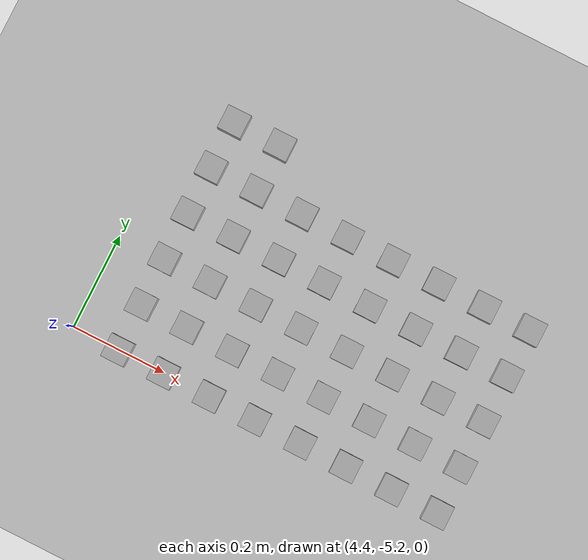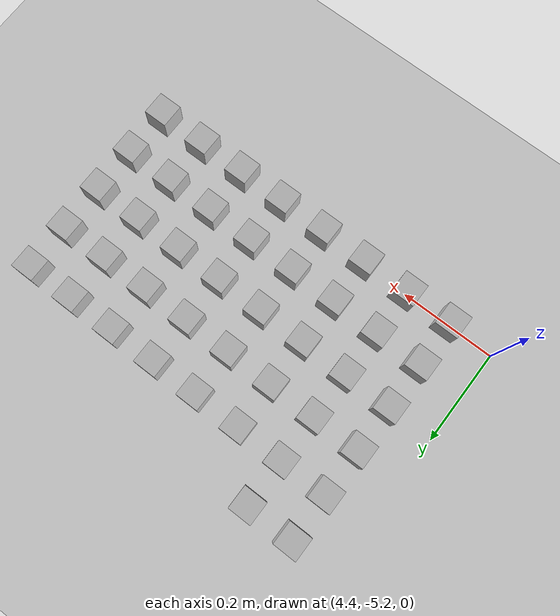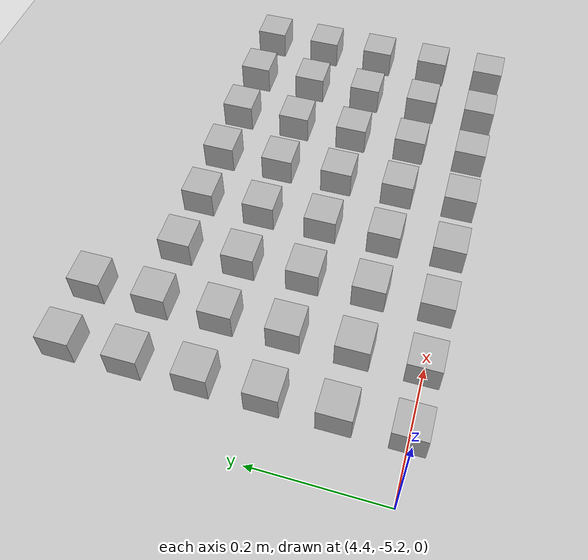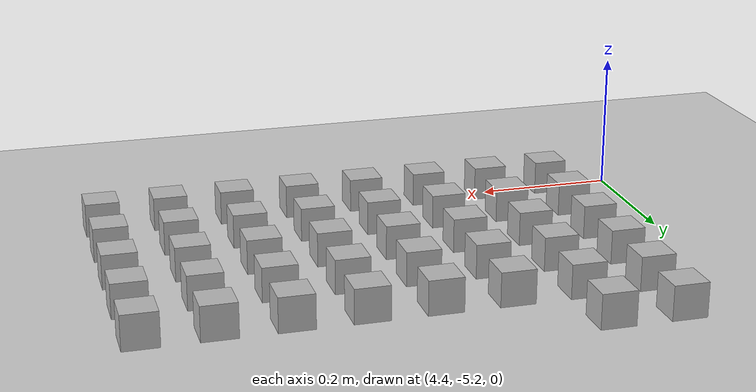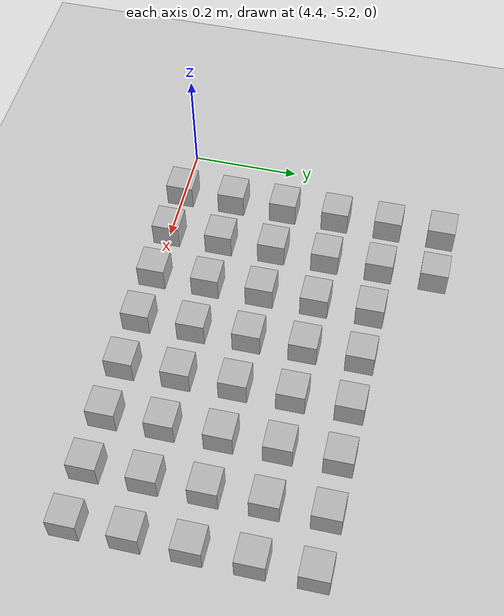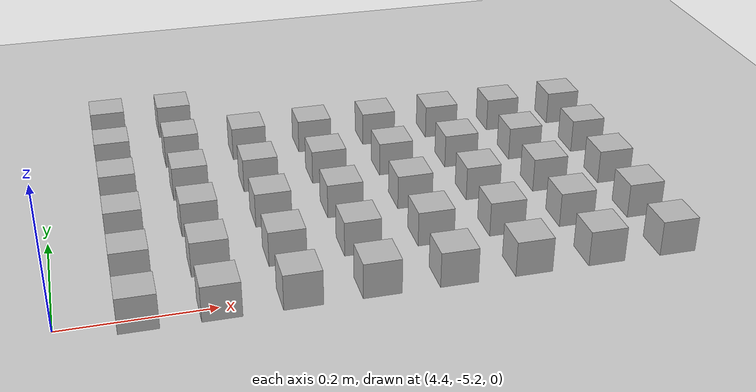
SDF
<sdf version="1.6">
 <world name="default">
  <model name="ground_plane">
   <static>1</static>
   <link name="link">
    <collision name="collision">
     <geometry><plane><normal>0 0 1</normal><size>100 100</size></plane></geometry>
     <surface><friction><ode><mu>100</mu><mu2>50</mu2></ode></friction></surface>
    </collision>
    <visual name="visual">
     <cast_shadows>0</cast_shadows>
     <geometry><plane><normal>0 0 1</normal><size>100 100</size></plane></geometry>
     <material>
      <script><uri>file://media/materials/scripts/gazebo.material</uri><name>Gazebo/Grey</name></script>
     </material>
    </visual>
   </link>
  </model>
  <model name="at64">
   <static>0</static>
   <link name="link">
    <inertial>
     <mass>0.01</mass>
     <inertia><ixx>4e-05</ixx><ixy>0</ixy><ixz>0</ixz><iyy>4e-05</iyy><iyz>0</iyz><izz>4e-05</izz></inertia>
    </inertial>
    <visual name="visual">
     <geometry><box><size>0.05 0.05 0.05</size></box></geometry>
     <material>
      <script>
       <uri>model://at0/materials/scripts</uri>
       <uri>model://at0/materials/textures</uri>
       <name>at0/Diffuse</name>
      </script>
     </material>
    </visual>
    <collision name="collision">
     <geometry><box><size>0.05 0.05 0.05</size></box></geometry>
     <surface><friction><ode><mu>0.8</mu><mu2>0.7</mu2></ode></friction></surface>
    </collision>
   </link>
   <pose>4.5 -5.2 0.025 0 -0 0</pose>
  </model>
  <model name="at65">
   <static>0</static>
   <link name="link">
    <inertial>
     <mass>0.01</mass>
     <inertia><ixx>4e-05</ixx><ixy>0</ixy><ixz>0</ixz><iyy>4e-05</iyy><iyz>0</iyz><izz>4e-05</izz></inertia>
    </inertial>
    <visual name="visual">
     <geometry><box><size>0.05 0.05 0.05</size></box></geometry>
     <material>
      <script>
       <uri>model://at0/materials/scripts</uri>
       <uri>model://at0/materials/textures</uri>
       <name>at0/Diffuse</name>
      </script>
     </material>
    </visual>
    <collision name="collision">
     <geometry><box><size>0.05 0.05 0.05</size></box></geometry>
     <surface><friction><ode><mu>0.8</mu><mu2>0.7</mu2></ode></friction></surface>
    </collision>
   </link>
   <pose>4.6 -5.2 0.025 0 -0 0</pose>
  </model>
  <model name="at66">
   <static>0</static>
   <link name="link">
    <inertial>
     <mass>0.01</mass>
     <inertia><ixx>4e-05</ixx><ixy>0</ixy><ixz>0</ixz><iyy>4e-05</iyy><iyz>0</iyz><izz>4e-05</izz></inertia>
    </inertial>
    <visual name="visual">
     <geometry><box><size>0.05 0.05 0.05</size></box></geometry>
     <material>
      <script>
       <uri>model://at0/materials/scripts</uri>
       <uri>model://at0/materials/textures</uri>
       <name>at0/Diffuse</name>
      </script>
     </material>
    </visual>
    <collision name="collision">
     <geometry><box><size>0.05 0.05 0.05</size></box></geometry>
     <surface><friction><ode><mu>0.8</mu><mu2>0.7</mu2></ode></friction></surface>
    </collision>
   </link>
   <pose>4.7 -5.2 0.025 0 -0 0</pose>
  </model>
  <model name="at67">
   <static>0</static>
   <link name="link">
    <inertial>
     <mass>0.01</mass>
     <inertia><ixx>4e-05</ixx><ixy>0</ixy><ixz>0</ixz><iyy>4e-05</iyy><iyz>0</iyz><izz>4e-05</izz></inertia>
    </inertial>
    <visual name="visual">
     <geometry><box><size>0.05 0.05 0.05</size></box></geometry>
     <material>
      <script>
       <uri>model://at0/materials/scripts</uri>
       <uri>model://at0/materials/textures</uri>
       <name>at0/Diffuse</name>
      </script>
     </material>
    </visual>
    <collision name="collision">
     <geometry><box><size>0.05 0.05 0.05</size></box></geometry>
     <surface><friction><ode><mu>0.8</mu><mu2>0.7</mu2></ode></friction></surface>
    </collision>
   </link>
   <pose>4.8 -5.2 0.025 0 -0 0</pose>
  </model>
  <model name="at68">
   <static>0</static>
   <link name="link">
    <inertial>
     <mass>0.01</mass>
     <inertia><ixx>4e-05</ixx><ixy>0</ixy><ixz>0</ixz><iyy>4e-05</iyy><iyz>0</iyz><izz>4e-05</izz></inertia>
    </inertial>
    <visual name="visual">
     <geometry><box><size>0.05 0.05 0.05</size></box></geometry>
     <material>
      <script>
       <uri>model://at0/materials/scripts</uri>
       <uri>model://at0/materials/textures</uri>
       <name>at0/Diffuse</name>
      </script>
     </material>
    </visual>
    <collision name="collision">
     <geometry><box><size>0.05 0.05 0.05</size></box></geometry>
     <surface><friction><ode><mu>0.8</mu><mu2>0.7</mu2></ode></friction></surface>
    </collision>
   </link>
   <pose>4.9 -5.2 0.025 0 -0 0</pose>
  </model>
  <model name="at69">
   <static>0</static>
   <link name="link">
    <inertial>
     <mass>0.01</mass>
     <inertia><ixx>4e-05</ixx><ixy>0</ixy><ixz>0</ixz><iyy>4e-05</iyy><iyz>0</iyz><izz>4e-05</izz></inertia>
    </inertial>
    <visual name="visual">
     <geometry><box><size>0.05 0.05 0.05</size></box></geometry>
     <material>
      <script>
       <uri>model://at0/materials/scripts</uri>
       <uri>model://at0/materials/textures</uri>
       <name>at0/Diffuse</name>
      </script>
     </material>
    </visual>
    <collision name="collision">
     <geometry><box><size>0.05 0.05 0.05</size></box></geometry>
     <surface><friction><ode><mu>0.8</mu><mu2>0.7</mu2></ode></friction></surface>
    </collision>
   </link>
   <pose>5.0 -5.2 0.025 0 -0 0</pose>
  </model>
  <model name="at70">
   <static>0</static>
   <link name="link">
    <inertial>
     <mass>0.01</mass>
     <inertia><ixx>4e-05</ixx><ixy>0</ixy><ixz>0</ixz><iyy>4e-05</iyy><iyz>0</iyz><izz>4e-05</izz></inertia>
    </inertial>
    <visual name="visual">
     <geometry><box><size>0.05 0.05 0.05</size></box></geometry>
     <material>
      <script>
       <uri>model://at0/materials/scripts</uri>
       <uri>model://at0/materials/textures</uri>
       <name>at0/Diffuse</name>
      </script>
     </material>
    </visual>
    <collision name="collision">
     <geometry><box><size>0.05 0.05 0.05</size></box></geometry>
     <surface><friction><ode><mu>0.8</mu><mu2>0.7</mu2></ode></friction></surface>
    </collision>
   </link>
   <pose>5.1 -5.2 0.025 0 -0 0</pose>
  </model>
  <model name="at71">
   <static>0</static>
   <link name="link">
    <inertial>
     <mass>0.01</mass>
     <inertia><ixx>4e-05</ixx><ixy>0</ixy><ixz>0</ixz><iyy>4e-05</iyy><iyz>0</iyz><izz>4e-05</izz></inertia>
    </inertial>
    <visual name="visual">
     <geometry><box><size>0.05 0.05 0.05</size></box></geometry>
     <material>
      <script>
       <uri>model://at0/materials/scripts</uri>
       <uri>model://at0/materials/textures</uri>
       <name>at0/Diffuse</name>
      </script>
     </material>
    </visual>
    <collision name="collision">
     <geometry><box><size>0.05 0.05 0.05</size></box></geometry>
     <surface><friction><ode><mu>0.8</mu><mu2>0.7</mu2></ode></friction></surface>
    </collision>
   </link>
   <pose>5.2 -5.2 0.025 0 -0 0</pose>
  </model>
  <model name="at72">
   <static>0</static>
   <link name="link">
    <inertial>
     <mass>0.01</mass>
     <inertia><ixx>4e-05</ixx><ixy>0</ixy><ixz>0</ixz><iyy>4e-05</iyy><iyz>0</iyz><izz>4e-05</izz></inertia>
    </inertial>
    <visual name="visual">
     <geometry><box><size>0.05 0.05 0.05</size></box></geometry>
     <material>
      <script>
       <uri>model://at0/materials/scripts</uri>
       <uri>model://at0/materials/textures</uri>
       <name>at0/Diffuse</name>
      </script>
     </material>
    </visual>
    <collision name="collision">
     <geometry><box><size>0.05 0.05 0.05</size></box></geometry>
     <surface><friction><ode><mu>0.8</mu><mu2>0.7</mu2></ode></friction></surface>
    </collision>
   </link>
   <pose>4.5 -5.1 0.025 0 -0 0</pose>
  </model>
  <model name="at73">
   <static>0</static>
   <link name="link">
    <inertial>
     <mass>0.01</mass>
     <inertia><ixx>4e-05</ixx><ixy>0</ixy><ixz>0</ixz><iyy>4e-05</iyy><iyz>0</iyz><izz>4e-05</izz></inertia>
    </inertial>
    <visual name="visual">
     <geometry><box><size>0.05 0.05 0.05</size></box></geometry>
     <material>
      <script>
       <uri>model://at0/materials/scripts</uri>
       <uri>model://at0/materials/textures</uri>
       <name>at0/Diffuse</name>
      </script>
     </material>
    </visual>
    <collision name="collision">
     <geometry><box><size>0.05 0.05 0.05</size></box></geometry>
     <surface><friction><ode><mu>0.8</mu><mu2>0.7</mu2></ode></friction></surface>
    </collision>
   </link>
   <pose>4.6 -5.1 0.025 0 -0 0</pose>
  </model>
  <model name="at74">
   <static>0</static>
   <link name="link">
    <inertial>
     <mass>0.01</mass>
     <inertia><ixx>4e-05</ixx><ixy>0</ixy><ixz>0</ixz><iyy>4e-05</iyy><iyz>0</iyz><izz>4e-05</izz></inertia>
    </inertial>
    <visual name="visual">
     <geometry><box><size>0.05 0.05 0.05</size></box></geometry>
     <material>
      <script>
       <uri>model://at0/materials/scripts</uri>
       <uri>model://at0/materials/textures</uri>
       <name>at0/Diffuse</name>
      </script>
     </material>
    </visual>
    <collision name="collision">
     <geometry><box><size>0.05 0.05 0.05</size></box></geometry>
     <surface><friction><ode><mu>0.8</mu><mu2>0.7</mu2></ode></friction></surface>
    </collision>
   </link>
   <pose>4.7 -5.1 0.025 0 -0 0</pose>
  </model>
  <model name="at75">
   <static>0</static>
   <link name="link">
    <inertial>
     <mass>0.01</mass>
     <inertia><ixx>4e-05</ixx><ixy>0</ixy><ixz>0</ixz><iyy>4e-05</iyy><iyz>0</iyz><izz>4e-05</izz></inertia>
    </inertial>
    <visual name="visual">
     <geometry><box><size>0.05 0.05 0.05</size></box></geometry>
     <material>
      <script>
       <uri>model://at0/materials/scripts</uri>
       <uri>model://at0/materials/textures</uri>
       <name>at0/Diffuse</name>
      </script>
     </material>
    </visual>
    <collision name="collision">
     <geometry><box><size>0.05 0.05 0.05</size></box></geometry>
     <surface><friction><ode><mu>0.8</mu><mu2>0.7</mu2></ode></friction></surface>
    </collision>
   </link>
   <pose>4.8 -5.1 0.025 0 -0 0</pose>
  </model>
  <model name="at76">
   <static>0</static>
   <link name="link">
    <inertial>
     <mass>0.01</mass>
     <inertia><ixx>4e-05</ixx><ixy>0</ixy><ixz>0</ixz><iyy>4e-05</iyy><iyz>0</iyz><izz>4e-05</izz></inertia>
    </inertial>
    <visual name="visual">
     <geometry><box><size>0.05 0.05 0.05</size></box></geometry>
     <material>
      <script>
       <uri>model://at0/materials/scripts</uri>
       <uri>model://at0/materials/textures</uri>
       <name>at0/Diffuse</name>
      </script>
     </material>
    </visual>
    <collision name="collision">
     <geometry><box><size>0.05 0.05 0.05</size></box></geometry>
     <surface><friction><ode><mu>0.8</mu><mu2>0.7</mu2></ode></friction></surface>
    </collision>
   </link>
   <pose>4.9 -5.1 0.025 0 -0 0</pose>
  </model>
  <model name="at77">
   <static>0</static>
   <link name="link">
    <inertial>
     <mass>0.01</mass>
     <inertia><ixx>4e-05</ixx><ixy>0</ixy><ixz>0</ixz><iyy>4e-05</iyy><iyz>0</iyz><izz>4e-05</izz></inertia>
    </inertial>
    <visual name="visual">
     <geometry><box><size>0.05 0.05 0.05</size></box></geometry>
     <material>
      <script>
       <uri>model://at0/materials/scripts</uri>
       <uri>model://at0/materials/textures</uri>
       <name>at0/Diffuse</name>
      </script>
     </material>
    </visual>
    <collision name="collision">
     <geometry><box><size>0.05 0.05 0.05</size></box></geometry>
     <surface><friction><ode><mu>0.8</mu><mu2>0.7</mu2></ode></friction></surface>
    </collision>
   </link>
   <pose>5.0 -5.1 0.025 0 -0 0</pose>
  </model>
  <model name="at78">
   <static>0</static>
   <link name="link">
    <inertial>
     <mass>0.01</mass>
     <inertia><ixx>4e-05</ixx><ixy>0</ixy><ixz>0</ixz><iyy>4e-05</iyy><iyz>0</iyz><izz>4e-05</izz></inertia>
    </inertial>
    <visual name="visual">
     <geometry><box><size>0.05 0.05 0.05</size></box></geometry>
     <material>
      <script>
       <uri>model://at0/materials/scripts</uri>
       <uri>model://at0/materials/textures</uri>
       <name>at0/Diffuse</name>
      </script>
     </material>
    </visual>
    <collision name="collision">
     <geometry><box><size>0.05 0.05 0.05</size></box></geometry>
     <surface><friction><ode><mu>0.8</mu><mu2>0.7</mu2></ode></friction></surface>
    </collision>
   </link>
   <pose>5.1 -5.1 0.025 0 -0 0</pose>
  </model>
  <model name="at79">
   <static>0</static>
   <link name="link">
    <inertial>
     <mass>0.01</mass>
     <inertia><ixx>4e-05</ixx><ixy>0</ixy><ixz>0</ixz><iyy>4e-05</iyy><iyz>0</iyz><izz>4e-05</izz></inertia>
    </inertial>
    <visual name="visual">
     <geometry><box><size>0.05 0.05 0.05</size></box></geometry>
     <material>
      <script>
       <uri>model://at0/materials/scripts</uri>
       <uri>model://at0/materials/textures</uri>
       <name>at0/Diffuse</name>
      </script>
     </material>
    </visual>
    <collision name="collision">
     <geometry><box><size>0.05 0.05 0.05</size></box></geometry>
     <surface><friction><ode><mu>0.8</mu><mu2>0.7</mu2></ode></friction></surface>
    </collision>
   </link>
   <pose>5.2 -5.1 0.025 0 -0 0</pose>
  </model>
  <model name="at80">
   <static>0</static>
   <link name="link">
    <inertial>
     <mass>0.01</mass>
     <inertia><ixx>4e-05</ixx><ixy>0</ixy><ixz>0</ixz><iyy>4e-05</iyy><iyz>0</iyz><izz>4e-05</izz></inertia>
    </inertial>
    <visual name="visual">
     <geometry><box><size>0.05 0.05 0.05</size></box></geometry>
     <material>
      <script>
       <uri>model://at0/materials/scripts</uri>
       <uri>model://at0/materials/textures</uri>
       <name>at0/Diffuse</name>
      </script>
     </material>
    </visual>
    <collision name="collision">
     <geometry><box><size>0.05 0.05 0.05</size></box></geometry>
     <surface><friction><ode><mu>0.8</mu><mu2>0.7</mu2></ode></friction></surface>
    </collision>
   </link>
   <pose>4.5 -5.0 0.025 0 -0 0</pose>
  </model>
  <model name="at81">
   <static>0</static>
   <link name="link">
    <inertial>
     <mass>0.01</mass>
     <inertia><ixx>4e-05</ixx><ixy>0</ixy><ixz>0</ixz><iyy>4e-05</iyy><iyz>0</iyz><izz>4e-05</izz></inertia>
    </inertial>
    <visual name="visual">
     <geometry><box><size>0.05 0.05 0.05</size></box></geometry>
     <material>
      <script>
       <uri>model://at0/materials/scripts</uri>
       <uri>model://at0/materials/textures</uri>
       <name>at0/Diffuse</name>
      </script>
     </material>
    </visual>
    <collision name="collision">
     <geometry><box><size>0.05 0.05 0.05</size></box></geometry>
     <surface><friction><ode><mu>0.8</mu><mu2>0.7</mu2></ode></friction></surface>
    </collision>
   </link>
   <pose>4.6 -5.0 0.025 0 -0 0</pose>
  </model>
  <model name="at82">
   <static>0</static>
   <link name="link">
    <inertial>
     <mass>0.01</mass>
     <inertia><ixx>4e-05</ixx><ixy>0</ixy><ixz>0</ixz><iyy>4e-05</iyy><iyz>0</iyz><izz>4e-05</izz></inertia>
    </inertial>
    <visual name="visual">
     <geometry><box><size>0.05 0.05 0.05</size></box></geometry>
     <material>
      <script>
       <uri>model://at0/materials/scripts</uri>
       <uri>model://at0/materials/textures</uri>
       <name>at0/Diffuse</name>
      </script>
     </material>
    </visual>
    <collision name="collision">
     <geometry><box><size>0.05 0.05 0.05</size></box></geometry>
     <surface><friction><ode><mu>0.8</mu><mu2>0.7</mu2></ode></friction></surface>
    </collision>
   </link>
   <pose>4.7 -5.0 0.025 0 -0 0</pose>
  </model>
  <model name="at83">
   <static>0</static>
   <link name="link">
    <inertial>
     <mass>0.01</mass>
     <inertia><ixx>4e-05</ixx><ixy>0</ixy><ixz>0</ixz><iyy>4e-05</iyy><iyz>0</iyz><izz>4e-05</izz></inertia>
    </inertial>
    <visual name="visual">
     <geometry><box><size>0.05 0.05 0.05</size></box></geometry>
     <material>
      <script>
       <uri>model://at0/materials/scripts</uri>
       <uri>model://at0/materials/textures</uri>
       <name>at0/Diffuse</name>
      </script>
     </material>
    </visual>
    <collision name="collision">
     <geometry><box><size>0.05 0.05 0.05</size></box></geometry>
     <surface><friction><ode><mu>0.8</mu><mu2>0.7</mu2></ode></friction></surface>
    </collision>
   </link>
   <pose>4.8 -5.0 0.025 0 -0 0</pose>
  </model>
  <model name="at84">
   <static>0</static>
   <link name="link">
    <inertial>
     <mass>0.01</mass>
     <inertia><ixx>4e-05</ixx><ixy>0</ixy><ixz>0</ixz><iyy>4e-05</iyy><iyz>0</iyz><izz>4e-05</izz></inertia>
    </inertial>
    <visual name="visual">
     <geometry><box><size>0.05 0.05 0.05</size></box></geometry>
     <material>
      <script>
       <uri>model://at0/materials/scripts</uri>
       <uri>model://at0/materials/textures</uri>
       <name>at0/Diffuse</name>
      </script>
     </material>
    </visual>
    <collision name="collision">
     <geometry><box><size>0.05 0.05 0.05</size></box></geometry>
     <surface><friction><ode><mu>0.8</mu><mu2>0.7</mu2></ode></friction></surface>
    </collision>
   </link>
   <pose>4.9 -5.0 0.025 0 -0 0</pose>
  </model>
  <model name="at85">
   <static>0</static>
   <link name="link">
    <inertial>
     <mass>0.01</mass>
     <inertia><ixx>4e-05</ixx><ixy>0</ixy><ixz>0</ixz><iyy>4e-05</iyy><iyz>0</iyz><izz>4e-05</izz></inertia>
    </inertial>
    <visual name="visual">
     <geometry><box><size>0.05 0.05 0.05</size></box></geometry>
     <material>
      <script>
       <uri>model://at0/materials/scripts</uri>
       <uri>model://at0/materials/textures</uri>
       <name>at0/Diffuse</name>
      </script>
     </material>
    </visual>
    <collision name="collision">
     <geometry><box><size>0.05 0.05 0.05</size></box></geometry>
     <surface><friction><ode><mu>0.8</mu><mu2>0.7</mu2></ode></friction></surface>
    </collision>
   </link>
   <pose>5.0 -5.0 0.025 0 -0 0</pose>
  </model>
  <model name="at86">
   <static>0</static>
   <link name="link">
    <inertial>
     <mass>0.01</mass>
     <inertia><ixx>4e-05</ixx><ixy>0</ixy><ixz>0</ixz><iyy>4e-05</iyy><iyz>0</iyz><izz>4e-05</izz></inertia>
    </inertial>
    <visual name="visual">
     <geometry><box><size>0.05 0.05 0.05</size></box></geometry>
     <material>
      <script>
       <uri>model://at0/materials/scripts</uri>
       <uri>model://at0/materials/textures</uri>
       <name>at0/Diffuse</name>
      </script>
     </material>
    </visual>
    <collision name="collision">
     <geometry><box><size>0.05 0.05 0.05</size></box></geometry>
     <surface><friction><ode><mu>0.8</mu><mu2>0.7</mu2></ode></friction></surface>
    </collision>
   </link>
   <pose>5.1 -5.0 0.025 0 -0 0</pose>
  </model>
  <model name="at87">
   <static>0</static>
   <link name="link">
    <inertial>
     <mass>0.01</mass>
     <inertia><ixx>4e-05</ixx><ixy>0</ixy><ixz>0</ixz><iyy>4e-05</iyy><iyz>0</iyz><izz>4e-05</izz></inertia>
    </inertial>
    <visual name="visual">
     <geometry><box><size>0.05 0.05 0.05</size></box></geometry>
     <material>
      <script>
       <uri>model://at0/materials/scripts</uri>
       <uri>model://at0/materials/textures</uri>
       <name>at0/Diffuse</name>
      </script>
     </material>
    </visual>
    <collision name="collision">
     <geometry><box><size>0.05 0.05 0.05</size></box></geometry>
     <surface><friction><ode><mu>0.8</mu><mu2>0.7</mu2></ode></friction></surface>
    </collision>
   </link>
   <pose>5.2 -5.0 0.025 0 -0 0</pose>
  </model>
  <model name="at88">
   <static>0</static>
   <link name="link">
    <inertial>
     <mass>0.01</mass>
     <inertia><ixx>4e-05</ixx><ixy>0</ixy><ixz>0</ixz><iyy>4e-05</iyy><iyz>0</iyz><izz>4e-05</izz></inertia>
    </inertial>
    <visual name="visual">
     <geometry><box><size>0.05 0.05 0.05</size></box></geometry>
     <material>
      <script>
       <uri>model://at0/materials/scripts</uri>
       <uri>model://at0/materials/textures</uri>
       <name>at0/Diffuse</name>
      </script>
     </material>
    </visual>
    <collision name="collision">
     <geometry><box><size>0.05 0.05 0.05</size></box></geometry>
     <surface><friction><ode><mu>0.8</mu><mu2>0.7</mu2></ode></friction></surface>
    </collision>
   </link>
   <pose>4.5 -4.9 0.025 0 -0 0</pose>
  </model>
  <model name="at89">
   <static>0</static>
   <link name="link">
    <inertial>
     <mass>0.01</mass>
     <inertia><ixx>4e-05</ixx><ixy>0</ixy><ixz>0</ixz><iyy>4e-05</iyy><iyz>0</iyz><izz>4e-05</izz></inertia>
    </inertial>
    <visual name="visual">
     <geometry><box><size>0.05 0.05 0.05</size></box></geometry>
     <material>
      <script>
       <uri>model://at0/materials/scripts</uri>
       <uri>model://at0/materials/textures</uri>
       <name>at0/Diffuse</name>
      </script>
     </material>
    </visual>
    <collision name="collision">
     <geometry><box><size>0.05 0.05 0.05</size></box></geometry>
     <surface><friction><ode><mu>0.8</mu><mu2>0.7</mu2></ode></friction></surface>
    </collision>
   </link>
   <pose>4.6 -4.9 0.025 0 -0 0</pose>
  </model>
  <model name="at90">
   <static>0</static>
   <link name="link">
    <inertial>
     <mass>0.01</mass>
     <inertia><ixx>4e-05</ixx><ixy>0</ixy><ixz>0</ixz><iyy>4e-05</iyy><iyz>0</iyz><izz>4e-05</izz></inertia>
    </inertial>
    <visual name="visual">
     <geometry><box><size>0.05 0.05 0.05</size></box></geometry>
     <material>
      <script>
       <uri>model://at0/materials/scripts</uri>
       <uri>model://at0/materials/textures</uri>
       <name>at0/Diffuse</name>
      </script>
     </material>
    </visual>
    <collision name="collision">
     <geometry><box><size>0.05 0.05 0.05</size></box></geometry>
     <surface><friction><ode><mu>0.8</mu><mu2>0.7</mu2></ode></friction></surface>
    </collision>
   </link>
   <pose>4.7 -4.9 0.025 0 -0 0</pose>
  </model>
  <model name="at91">
   <static>0</static>
   <link name="link">
    <inertial>
     <mass>0.01</mass>
     <inertia><ixx>4e-05</ixx><ixy>0</ixy><ixz>0</ixz><iyy>4e-05</iyy><iyz>0</iyz><izz>4e-05</izz></inertia>
    </inertial>
    <visual name="visual">
     <geometry><box><size>0.05 0.05 0.05</size></box></geometry>
     <material>
      <script>
       <uri>model://at0/materials/scripts</uri>
       <uri>model://at0/materials/textures</uri>
       <name>at0/Diffuse</name>
      </script>
     </material>
    </visual>
    <collision name="collision">
     <geometry><box><size>0.05 0.05 0.05</size></box></geometry>
     <surface><friction><ode><mu>0.8</mu><mu2>0.7</mu2></ode></friction></surface>
    </collision>
   </link>
   <pose>4.8 -4.9 0.025 0 -0 0</pose>
  </model>
  <model name="at92">
   <static>0</static>
   <link name="link">
    <inertial>
     <mass>0.01</mass>
     <inertia><ixx>4e-05</ixx><ixy>0</ixy><ixz>0</ixz><iyy>4e-05</iyy><iyz>0</iyz><izz>4e-05</izz></inertia>
    </inertial>
    <visual name="visual">
     <geometry><box><size>0.05 0.05 0.05</size></box></geometry>
     <material>
      <script>
       <uri>model://at0/materials/scripts</uri>
       <uri>model://at0/materials/textures</uri>
       <name>at0/Diffuse</name>
      </script>
     </material>
    </visual>
    <collision name="collision">
     <geometry><box><size>0.05 0.05 0.05</size></box></geometry>
     <surface><friction><ode><mu>0.8</mu><mu2>0.7</mu2></ode></friction></surface>
    </collision>
   </link>
   <pose>4.9 -4.9 0.025 0 -0 0</pose>
  </model>
  <model name="at93">
   <static>0</static>
   <link name="link">
    <inertial>
     <mass>0.01</mass>
     <inertia><ixx>4e-05</ixx><ixy>0</ixy><ixz>0</ixz><iyy>4e-05</iyy><iyz>0</iyz><izz>4e-05</izz></inertia>
    </inertial>
    <visual name="visual">
     <geometry><box><size>0.05 0.05 0.05</size></box></geometry>
     <material>
      <script>
       <uri>model://at0/materials/scripts</uri>
       <uri>model://at0/materials/textures</uri>
       <name>at0/Diffuse</name>
      </script>
     </material>
    </visual>
    <collision name="collision">
     <geometry><box><size>0.05 0.05 0.05</size></box></geometry>
     <surface><friction><ode><mu>0.8</mu><mu2>0.7</mu2></ode></friction></surface>
    </collision>
   </link>
   <pose>5.0 -4.9 0.025 0 -0 0</pose>
  </model>
  <model name="at94">
   <static>0</static>
   <link name="link">
    <inertial>
     <mass>0.01</mass>
     <inertia><ixx>4e-05</ixx><ixy>0</ixy><ixz>0</ixz><iyy>4e-05</iyy><iyz>0</iyz><izz>4e-05</izz></inertia>
    </inertial>
    <visual name="visual">
     <geometry><box><size>0.05 0.05 0.05</size></box></geometry>
     <material>
      <script>
       <uri>model://at0/materials/scripts</uri>
       <uri>model://at0/materials/textures</uri>
       <name>at0/Diffuse</name>
      </script>
     </material>
    </visual>
    <collision name="collision">
     <geometry><box><size>0.05 0.05 0.05</size></box></geometry>
     <surface><friction><ode><mu>0.8</mu><mu2>0.7</mu2></ode></friction></surface>
    </collision>
   </link>
   <pose>5.1 -4.9 0.025 0 -0 0</pose>
  </model>
  <model name="at95">
   <static>0</static>
   <link name="link">
    <inertial>
     <mass>0.01</mass>
     <inertia><ixx>4e-05</ixx><ixy>0</ixy><ixz>0</ixz><iyy>4e-05</iyy><iyz>0</iyz><izz>4e-05</izz></inertia>
    </inertial>
    <visual name="visual">
     <geometry><box><size>0.05 0.05 0.05</size></box></geometry>
     <material>
      <script>
       <uri>model://at0/materials/scripts</uri>
       <uri>model://at0/materials/textures</uri>
       <name>at0/Diffuse</name>
      </script>
     </material>
    </visual>
    <collision name="collision">
     <geometry><box><size>0.05 0.05 0.05</size></box></geometry>
     <surface><friction><ode><mu>0.8</mu><mu2>0.7</mu2></ode></friction></surface>
    </collision>
   </link>
   <pose>5.2 -4.9 0.025 0 -0 0</pose>
  </model>
  <model name="at96">
   <static>0</static>
   <link name="link">
    <inertial>
     <mass>0.01</mass>
     <inertia><ixx>4e-05</ixx><ixy>0</ixy><ixz>0</ixz><iyy>4e-05</iyy><iyz>0</iyz><izz>4e-05</izz></inertia>
    </inertial>
    <visual name="visual">
     <geometry><box><size>0.05 0.05 0.05</size></box></geometry>
     <material>
      <script>
       <uri>model://at0/materials/scripts</uri>
       <uri>model://at0/materials/textures</uri>
       <name>at0/Diffuse</name>
      </script>
     </material>
    </visual>
    <collision name="collision">
     <geometry><box><size>0.05 0.05 0.05</size></box></geometry>
     <surface><friction><ode><mu>0.8</mu><mu2>0.7</mu2></ode></friction></surface>
    </collision>
   </link>
   <pose>4.5 -4.8 0.025 0 -0 0</pose>
  </model>
  <model name="at97">
   <static>0</static>
   <link name="link">
    <inertial>
     <mass>0.01</mass>
     <inertia><ixx>4e-05</ixx><ixy>0</ixy><ixz>0</ixz><iyy>4e-05</iyy><iyz>0</iyz><izz>4e-05</izz></inertia>
    </inertial>
    <visual name="visual">
     <geometry><box><size>0.05 0.05 0.05</size></box></geometry>
     <material>
      <script>
       <uri>model://at0/materials/scripts</uri>
       <uri>model://at0/materials/textures</uri>
       <name>at0/Diffuse</name>
      </script>
     </material>
    </visual>
    <collision name="collision">
     <geometry><box><size>0.05 0.05 0.05</size></box></geometry>
     <surface><friction><ode><mu>0.8</mu><mu2>0.7</mu2></ode></friction></surface>
    </collision>
   </link>
   <pose>4.6 -4.8 0.025 0 -0 0</pose>
  </model>
  <model name="at98">
   <static>0</static>
   <link name="link">
    <inertial>
     <mass>0.01</mass>
     <inertia><ixx>4e-05</ixx><ixy>0</ixy><ixz>0</ixz><iyy>4e-05</iyy><iyz>0</iyz><izz>4e-05</izz></inertia>
    </inertial>
    <visual name="visual">
     <geometry><box><size>0.05 0.05 0.05</size></box></geometry>
     <material>
      <script>
       <uri>model://at0/materials/scripts</uri>
       <uri>model://at0/materials/textures</uri>
       <name>at0/Diffuse</name>
      </script>
     </material>
    </visual>
    <collision name="collision">
     <geometry><box><size>0.05 0.05 0.05</size></box></geometry>
     <surface><friction><ode><mu>0.8</mu><mu2>0.7</mu2></ode></friction></surface>
    </collision>
   </link>
   <pose>4.7 -4.8 0.025 0 -0 0</pose>
  </model>
  <model name="at99">
   <static>0</static>
   <link name="link">
    <inertial>
     <mass>0.01</mass>
     <inertia><ixx>4e-05</ixx><ixy>0</ixy><ixz>0</ixz><iyy>4e-05</iyy><iyz>0</iyz><izz>4e-05</izz></inertia>
    </inertial>
    <visual name="visual">
     <geometry><box><size>0.05 0.05 0.05</size></box></geometry>
     <material>
      <script>
       <uri>model://at0/materials/scripts</uri>
       <uri>model://at0/materials/textures</uri>
       <name>at0/Diffuse</name>
      </script>
     </material>
    </visual>
    <collision name="collision">
     <geometry><box><size>0.05 0.05 0.05</size></box></geometry>
     <surface><friction><ode><mu>0.8</mu><mu2>0.7</mu2></ode></friction></surface>
    </collision>
   </link>
   <pose>4.8 -4.8 0.025 0 -0 0</pose>
  </model>
  <model name="at100">
   <static>0</static>
   <link name="link">
    <inertial>
     <mass>0.01</mass>
     <inertia><ixx>4e-05</ixx><ixy>0</ixy><ixz>0</ixz><iyy>4e-05</iyy><iyz>0</iyz><izz>4e-05</izz></inertia>
    </inertial>
    <visual name="visual">
     <geometry><box><size>0.05 0.05 0.05</size></box></geometry>
     <material>
      <script>
       <uri>model://at0/materials/scripts</uri>
       <uri>model://at0/materials/textures</uri>
       <name>at0/Diffuse</name>
      </script>
     </material>
    </visual>
    <collision name="collision">
     <geometry><box><size>0.05 0.05 0.05</size></box></geometry>
     <surface><friction><ode><mu>0.8</mu><mu2>0.7</mu2></ode></friction></surface>
    </collision>
   </link>
   <pose>4.9 -4.8 0.025 0 -0 0</pose>
  </model>
  <model name="at101">
   <static>0</static>
   <link name="link">
    <inertial>
     <mass>0.01</mass>
     <inertia><ixx>4e-05</ixx><ixy>0</ixy><ixz>0</ixz><iyy>4e-05</iyy><iyz>0</iyz><izz>4e-05</izz></inertia>
    </inertial>
    <visual name="visual">
     <geometry><box><size>0.05 0.05 0.05</size></box></geometry>
     <material>
      <script>
       <uri>model://at0/materials/scripts</uri>
       <uri>model://at0/materials/textures</uri>
       <name>at0/Diffuse</name>
      </script>
     </material>
    </visual>
    <collision name="collision">
     <geometry><box><size>0.05 0.05 0.05</size></box></geometry>
     <surface><friction><ode><mu>0.8</mu><mu2>0.7</mu2></ode></friction></surface>
    </collision>
   </link>
   <pose>5.0 -4.8 0.025 0 -0 0</pose>
  </model>
  <model name="at102">
   <static>0</static>
   <link name="link">
    <inertial>
     <mass>0.01</mass>
     <inertia><ixx>4e-05</ixx><ixy>0</ixy><ixz>0</ixz><iyy>4e-05</iyy><iyz>0</iyz><izz>4e-05</izz></inertia>
    </inertial>
    <visual name="visual">
     <geometry><box><size>0.05 0.05 0.05</size></box></geometry>
     <material>
      <script>
       <uri>model://at0/materials/scripts</uri>
       <uri>model://at0/materials/textures</uri>
       <name>at0/Diffuse</name>
      </script>
     </material>
    </visual>
    <collision name="collision">
     <geometry><box><size>0.05 0.05 0.05</size></box></geometry>
     <surface><friction><ode><mu>0.8</mu><mu2>0.7</mu2></ode></friction></surface>
    </collision>
   </link>
   <pose>5.1 -4.8 0.025 0 -0 0</pose>
  </model>
  <model name="at103">
   <static>0</static>
   <link name="link">
    <inertial>
     <mass>0.01</mass>
     <inertia><ixx>4e-05</ixx><ixy>0</ixy><ixz>0</ixz><iyy>4e-05</iyy><iyz>0</iyz><izz>4e-05</izz></inertia>
    </inertial>
    <visual name="visual">
     <geometry><box><size>0.05 0.05 0.05</size></box></geometry>
     <material>
      <script>
       <uri>model://at0/materials/scripts</uri>
       <uri>model://at0/materials/textures</uri>
       <name>at0/Diffuse</name>
      </script>
     </material>
    </visual>
    <collision name="collision">
     <geometry><box><size>0.05 0.05 0.05</size></box></geometry>
     <surface><friction><ode><mu>0.8</mu><mu2>0.7</mu2></ode></friction></surface>
    </collision>
   </link>
   <pose>5.2 -4.8 0.025 0 -0 0</pose>
  </model>
  <model name="at104">
   <static>0</static>
   <link name="link">
    <inertial>
     <mass>0.01</mass>
     <inertia><ixx>4e-05</ixx><ixy>0</ixy><ixz>0</ixz><iyy>4e-05</iyy><iyz>0</iyz><izz>4e-05</izz></inertia>
    </inertial>
    <visual name="visual">
     <geometry><box><size>0.05 0.05 0.05</size></box></geometry>
     <material>
      <script>
       <uri>model://at0/materials/scripts</uri>
       <uri>model://at0/materials/textures</uri>
       <name>at0/Diffuse</name>
      </script>
     </material>
    </visual>
    <collision name="collision">
     <geometry><box><size>0.05 0.05 0.05</size></box></geometry>
     <surface><friction><ode><mu>0.8</mu><mu2>0.7</mu2></ode></friction></surface>
    </collision>
   </link>
   <pose>4.5 -4.7 0.025 0 -0 0</pose>
  </model>
  <model name="at105">
   <static>0</static>
   <link name="link">
    <inertial>
     <mass>0.01</mass>
     <inertia><ixx>4e-05</ixx><ixy>0</ixy><ixz>0</ixz><iyy>4e-05</iyy><iyz>0</iyz><izz>4e-05</izz></inertia>
    </inertial>
    <visual name="visual">
     <geometry><box><size>0.05 0.05 0.05</size></box></geometry>
     <material>
      <script>
       <uri>model://at0/materials/scripts</uri>
       <uri>model://at0/materials/textures</uri>
       <name>at0/Diffuse</name>
      </script>
     </material>
    </visual>
    <collision name="collision">
     <geometry><box><size>0.05 0.05 0.05</size></box></geometry>
     <surface><friction><ode><mu>0.8</mu><mu2>0.7</mu2></ode></friction></surface>
    </collision>
   </link>
   <pose>4.6 -4.7 0.025 0 -0 0</pose>
  </model>
 </world>
</sdf>
